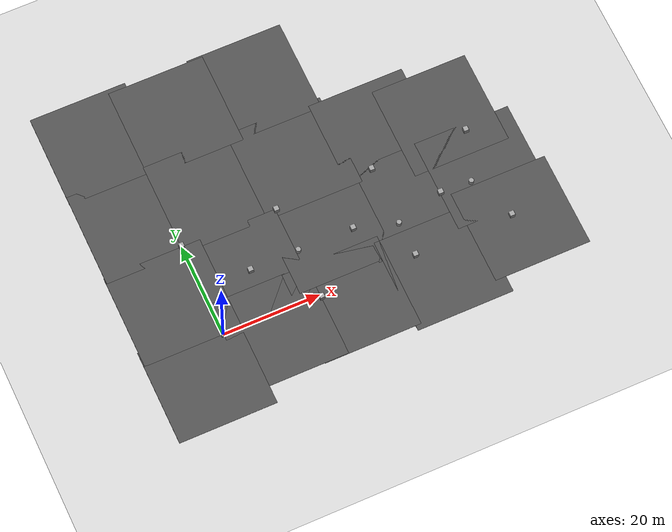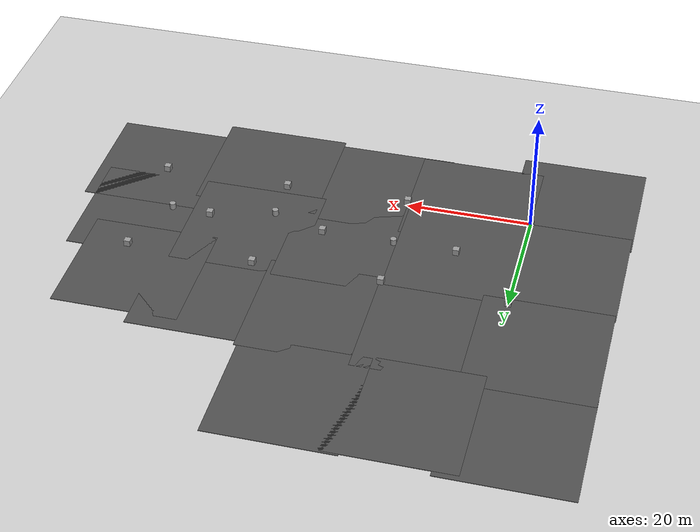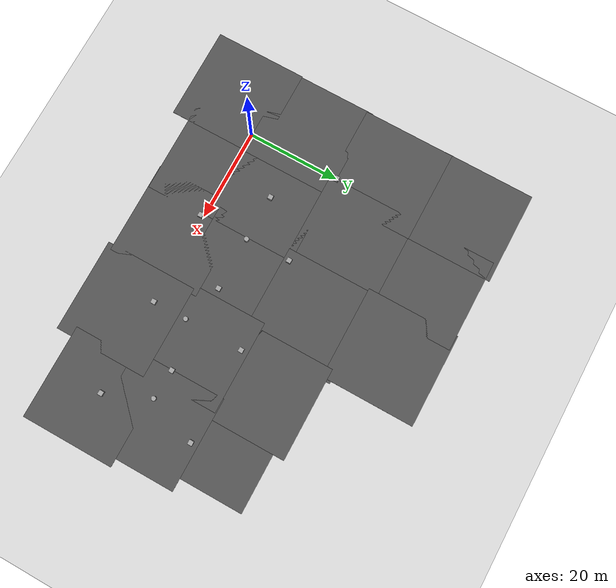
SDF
<sdf version="1.7">
 <world name="default">
  <light name="sun" type="directional">
   <pose>0 0 10 0 -0 0</pose>
   <diffuse>0.8 0.8 0.8 1</diffuse>
   <specular>0.2 0.2 0.2 1</specular>
   <attenuation>
    <range>1000</range>
    <constant>0.9</constant>
    <linear>0.01</linear>
    <quadratic>0.001</quadratic>
   </attenuation>
   <direction>-0.5 0.1 -0.9</direction>
   <spot><inner_angle>0</inner_angle><outer_angle>0</outer_angle><falloff>0</falloff></spot>
  </light>
  <model name="ground_plane">
   <static>1</static>
   <link name="link">
    <collision name="collision">
     <geometry><plane><normal>0 0 1</normal><size>100 100</size></plane></geometry>
     <surface><friction><ode><mu>100</mu><mu2>50</mu2></ode></friction></surface>
    </collision>
    <visual name="visual">
     <cast_shadows>0</cast_shadows>
     <geometry><plane><normal>0 0 1</normal><size>100 100</size></plane></geometry>
     <material>
      <script><uri>file://media/materials/scripts/gazebo.material</uri><name>Gazebo/Grey</name></script>
     </material>
    </visual>
   </link>
  </model>
  <gravity>0 0 -9.8</gravity>
  <magnetic_field>6e-06 2.3e-05 -4.2e-05</magnetic_field>
  <atmosphere type="adiabatic"/>
  <physics type="ode">
   <max_step_size>0.001</max_step_size>
   <real_time_factor>1</real_time_factor>
   <real_time_update_rate>1000</real_time_update_rate>
  </physics>
  <scene><ambient>0.4 0.4 0.4 1</ambient><background>0.7 0.7 0.7 1</background><shadows>1</shadows></scene>
  <audio><device>default</device></audio>
  <spherical_coordinates>
   <surface_model>EARTH_WGS84</surface_model>
   <latitude_deg>0</latitude_deg>
   <longitude_deg>0</longitude_deg>
   <elevation>0</elevation>
   <heading_deg>0</heading_deg>
  </spherical_coordinates>
  <model name="marker_bottom_left">
   <link name="link">
    <inertial>
     <mass>1</mass>
     <inertia>
      <ixx>0.166667</ixx>
      <ixy>0</ixy>
      <ixz>0</ixz>
      <iyy>0.166667</iyy>
      <iyz>0</iyz>
      <izz>0.166667</izz>
     </inertia>
    </inertial>
    <visual name="visual">
     <geometry><box><size>1 1 1</size></box></geometry>
     <material>
      <script><name>Gazebo/Grey</name><uri>file://media/materials/scripts/gazebo.material</uri></script>
      <shader type="pixel"/>
     </material>
    </visual>
    <collision name="collision">
     <geometry><box><size>1 1 1</size></box></geometry>
     <surface>
      <friction>
       <ode><mu>1</mu><mu2>1</mu2><fdir1>0 0 0</fdir1><slip1>0</slip1><slip2>0</slip2></ode>
       <torsional>
        <coefficient>1</coefficient>
        <patch_radius>0</patch_radius>
        <surface_radius>0</surface_radius>
        <use_patch_radius>1</use_patch_radius>
        <ode><slip>0</slip></ode>
       </torsional>
      </friction>
      <bounce><restitution_coefficient>0</restitution_coefficient><threshold>1e+06</threshold></bounce>
      <contact>
       <collide_without_contact>0</collide_without_contact>
       <collide_without_contact_bitmask>1</collide_without_contact_bitmask>
       <collide_bitmask>1</collide_bitmask>
       <ode>
        <soft_cfm>0</soft_cfm>
        <soft_erp>0.2</soft_erp>
        <kp>1e+13</kp>
        <kd>1</kd>
        <max_vel>0.01</max_vel>
        <min_depth>0</min_depth>
       </ode>
       <bullet>
        <split_impulse>1</split_impulse>
        <split_impulse_penetration_threshold>-0.01</split_impulse_penetration_threshold>
        <soft_cfm>0</soft_cfm>
        <soft_erp>0.2</soft_erp>
        <kp>1e+13</kp>
        <kd>1</kd>
       </bullet>
      </contact>
     </surface>
    </collision>
   </link>
   <static>1</static>
   <pose>0 20 0.549996 1e-05 -0 2.2e-05</pose>
  </model>
  <model name="marker_bottom_right">
   <link name="link">
    <inertial>
     <mass>1</mass>
     <inertia>
      <ixx>0.166667</ixx>
      <ixy>0</ixy>
      <ixz>0</ixz>
      <iyy>0.166667</iyy>
      <iyz>0</iyz>
      <izz>0.166667</izz>
     </inertia>
    </inertial>
    <visual name="visual">
     <geometry><box><size>1 1 1</size></box></geometry>
     <material>
      <script><name>Gazebo/Grey</name><uri>file://media/materials/scripts/gazebo.material</uri></script>
      <shader type="pixel"/>
     </material>
    </visual>
    <collision name="collision">
     <geometry><box><size>1 1 1</size></box></geometry>
     <surface>
      <friction>
       <ode><mu>1</mu><mu2>1</mu2><fdir1>0 0 0</fdir1><slip1>0</slip1><slip2>0</slip2></ode>
       <torsional>
        <coefficient>1</coefficient>
        <patch_radius>0</patch_radius>
        <surface_radius>0</surface_radius>
        <use_patch_radius>1</use_patch_radius>
        <ode><slip>0</slip></ode>
       </torsional>
      </friction>
      <bounce><restitution_coefficient>0</restitution_coefficient><threshold>1e+06</threshold></bounce>
      <contact>
       <collide_without_contact>0</collide_without_contact>
       <collide_without_contact_bitmask>1</collide_without_contact_bitmask>
       <collide_bitmask>1</collide_bitmask>
       <ode>
        <soft_cfm>0</soft_cfm>
        <soft_erp>0.2</soft_erp>
        <kp>1e+13</kp>
        <kd>1</kd>
        <max_vel>0.01</max_vel>
        <min_depth>0</min_depth>
       </ode>
       <bullet>
        <split_impulse>1</split_impulse>
        <split_impulse_penetration_threshold>-0.01</split_impulse_penetration_threshold>
        <soft_cfm>0</soft_cfm>
        <soft_erp>0.2</soft_erp>
        <kp>1e+13</kp>
        <kd>1</kd>
       </bullet>
      </contact>
     </surface>
    </collision>
   </link>
   <static>1</static>
  </model>
  <model name="marker_top_right">
   <link name="link">
    <inertial>
     <mass>1</mass>
     <inertia>
      <ixx>0.166667</ixx>
      <ixy>0</ixy>
      <ixz>0</ixz>
      <iyy>0.166667</iyy>
      <iyz>0</iyz>
      <izz>0.166667</izz>
     </inertia>
    </inertial>
    <visual name="visual">
     <geometry><box><size>1 1 1</size></box></geometry>
     <material>
      <script><name>Gazebo/Grey</name><uri>file://media/materials/scripts/gazebo.material</uri></script>
      <shader type="pixel"/>
     </material>
    </visual>
    <collision name="collision">
     <geometry><box><size>1 1 1</size></box></geometry>
     <surface>
      <friction>
       <ode><mu>1</mu><mu2>1</mu2><fdir1>0 0 0</fdir1><slip1>0</slip1><slip2>0</slip2></ode>
       <torsional>
        <coefficient>1</coefficient>
        <patch_radius>0</patch_radius>
        <surface_radius>0</surface_radius>
        <use_patch_radius>1</use_patch_radius>
        <ode><slip>0</slip></ode>
       </torsional>
      </friction>
      <bounce><restitution_coefficient>0</restitution_coefficient><threshold>1e+06</threshold></bounce>
      <contact>
       <collide_without_contact>0</collide_without_contact>
       <collide_without_contact_bitmask>1</collide_without_contact_bitmask>
       <collide_bitmask>1</collide_bitmask>
       <ode>
        <soft_cfm>0</soft_cfm>
        <soft_erp>0.2</soft_erp>
        <kp>1e+13</kp>
        <kd>1</kd>
        <max_vel>0.01</max_vel>
        <min_depth>0</min_depth>
       </ode>
       <bullet>
        <split_impulse>1</split_impulse>
        <split_impulse_penetration_threshold>-0.01</split_impulse_penetration_threshold>
        <soft_cfm>0</soft_cfm>
        <soft_erp>0.2</soft_erp>
        <kp>1e+13</kp>
        <kd>1</kd>
       </bullet>
      </contact>
     </surface>
    </collision>
   </link>
   <static>0</static>
   <pose>20.095 -0.660322 0.549995 1e-05 0 0.02167</pose>
  </model>
  <model name="marker_top_left">
   <link name="link">
    <inertial>
     <mass>1</mass>
     <inertia>
      <ixx>0.166667</ixx>
      <ixy>0</ixy>
      <ixz>0</ixz>
      <iyy>0.166667</iyy>
      <iyz>0</iyz>
      <izz>0.166667</izz>
     </inertia>
    </inertial>
    <visual name="visual">
     <geometry><box><size>1 1 1</size></box></geometry>
     <material>
      <script><name>Gazebo/Grey</name><uri>file://media/materials/scripts/gazebo.material</uri></script>
      <shader type="pixel"/>
     </material>
    </visual>
    <collision name="collision">
     <geometry><box><size>1 1 1</size></box></geometry>
     <surface>
      <friction>
       <ode><mu>1</mu><mu2>1</mu2><fdir1>0 0 0</fdir1><slip1>0</slip1><slip2>0</slip2></ode>
       <torsional>
        <coefficient>1</coefficient>
        <patch_radius>0</patch_radius>
        <surface_radius>0</surface_radius>
        <use_patch_radius>1</use_patch_radius>
        <ode><slip>0</slip></ode>
       </torsional>
      </friction>
      <bounce><restitution_coefficient>0</restitution_coefficient><threshold>1e+06</threshold></bounce>
      <contact>
       <collide_without_contact>0</collide_without_contact>
       <collide_without_contact_bitmask>1</collide_without_contact_bitmask>
       <collide_bitmask>1</collide_bitmask>
       <ode>
        <soft_cfm>0</soft_cfm>
        <soft_erp>0.2</soft_erp>
        <kp>1e+13</kp>
        <kd>1</kd>
        <max_vel>0.01</max_vel>
        <min_depth>0</min_depth>
       </ode>
       <bullet>
        <split_impulse>1</split_impulse>
        <split_impulse_penetration_threshold>-0.01</split_impulse_penetration_threshold>
        <soft_cfm>0</soft_cfm>
        <soft_erp>0.2</soft_erp>
        <kp>1e+13</kp>
        <kd>1</kd>
       </bullet>
      </contact>
     </surface>
    </collision>
   </link>
   <static>0</static>
   <pose>19.6961 19.6629 0.549997 1.1e-05 1e-06 -0.024595</pose>
  </model>
  <model name="asphalt_plane_clone_clone_0_clone_0">
   <static>1</static>
   <link name="link">
    <collision name="collision"><geometry><box><size>20 20 0.1</size></box></geometry></collision>
    <visual name="visual">
     <cast_shadows>0</cast_shadows>
     <geometry><box><size>20 20 0.1</size></box></geometry>
     <material>
      <script>
       <uri>model://asphalt_plane/materials/scripts</uri>
       <uri>model://asphalt_plane/materials/textures</uri>
       <name>vrc/asphalt</name>
      </script>
     </material>
    </visual>
   </link>
   <pose>9.55958 9.97898 0 0 -0 0</pose>
  </model>
  <model name="asphalt_plane_clone_clone_0_clone_0_clone">
   <static>1</static>
   <link name="link">
    <collision name="collision"><geometry><box><size>20 20 0.1</size></box></geometry></collision>
    <visual name="visual">
     <cast_shadows>0</cast_shadows>
     <geometry><box><size>20 20 0.1</size></box></geometry>
     <material>
      <script>
       <uri>model://asphalt_plane/materials/scripts</uri>
       <uri>model://asphalt_plane/materials/textures</uri>
       <name>vrc/asphalt</name>
      </script>
     </material>
    </visual>
   </link>
   <pose>26.6378 11.777 0 0 -0 0</pose>
  </model>
  <model name="asphalt_plane_clone_clone_0_clone_0_clone_clone">
   <static>1</static>
   <link name="link">
    <collision name="collision"><geometry><box><size>20 20 0.1</size></box></geometry></collision>
    <visual name="visual">
     <cast_shadows>0</cast_shadows>
     <geometry><box><size>20 20 0.1</size></box></geometry>
     <material>
      <script>
       <uri>model://asphalt_plane/materials/scripts</uri>
       <uri>model://asphalt_plane/materials/textures</uri>
       <name>vrc/asphalt</name>
      </script>
     </material>
    </visual>
   </link>
   <pose>10.0086 -3.1862 0 0 -0 0</pose>
  </model>
  <model name="asphalt_plane_clone_clone_0_clone_0_clone_clone_0">
   <static>1</static>
   <link name="link">
    <collision name="collision"><geometry><box><size>20 20 0.1</size></box></geometry></collision>
    <visual name="visual">
     <cast_shadows>0</cast_shadows>
     <geometry><box><size>20 20 0.1</size></box></geometry>
     <material>
      <script>
       <uri>model://asphalt_plane/materials/scripts</uri>
       <uri>model://asphalt_plane/materials/textures</uri>
       <name>vrc/asphalt</name>
      </script>
     </material>
    </visual>
   </link>
   <pose>25.0254 -3.29203 0 0 -0 0</pose>
  </model>
  <model name="asphalt_plane_clone_clone_0_clone_0_clone_clone_1">
   <static>1</static>
   <link name="link">
    <collision name="collision"><geometry><box><size>20 20 0.1</size></box></geometry></collision>
    <visual name="visual">
     <cast_shadows>0</cast_shadows>
     <geometry><box><size>20 20 0.1</size></box></geometry>
     <material>
      <script>
       <uri>model://asphalt_plane/materials/scripts</uri>
       <uri>model://asphalt_plane/materials/textures</uri>
       <name>vrc/asphalt</name>
      </script>
     </material>
    </visual>
   </link>
   <pose>9.93751 28.5985 0 0 -0 0</pose>
  </model>
  <model name="asphalt_plane_clone_clone_0_clone_0_clone_clone_2">
   <static>1</static>
   <link name="link">
    <collision name="collision"><geometry><box><size>20 20 0.1</size></box></geometry></collision>
    <visual name="visual">
     <cast_shadows>0</cast_shadows>
     <geometry><box><size>20 20 0.1</size></box></geometry>
     <material>
      <script>
       <uri>model://asphalt_plane/materials/scripts</uri>
       <uri>model://asphalt_plane/materials/textures</uri>
       <name>vrc/asphalt</name>
      </script>
     </material>
    </visual>
   </link>
   <pose>27.3435 28.4654 0 0 -0 0</pose>
  </model>
  <model name="asphalt_plane_clone_clone_0_clone_0_clone_clone_3">
   <static>1</static>
   <link name="link">
    <collision name="collision"><geometry><box><size>20 20 0.1</size></box></geometry></collision>
    <visual name="visual">
     <cast_shadows>0</cast_shadows>
     <geometry><box><size>20 20 0.1</size></box></geometry>
     <material>
      <script>
       <uri>model://asphalt_plane/materials/scripts</uri>
       <uri>model://asphalt_plane/materials/textures</uri>
       <name>vrc/asphalt</name>
      </script>
     </material>
    </visual>
   </link>
   <pose>-6.05119 28.7094 0 0 -0 0</pose>
  </model>
  <model name="asphalt_plane_clone_clone_0_clone_0_clone_clone_4">
   <static>1</static>
   <link name="link">
    <collision name="collision"><geometry><box><size>20 20 0.1</size></box></geometry></collision>
    <visual name="visual">
     <cast_shadows>0</cast_shadows>
     <geometry><box><size>20 20 0.1</size></box></geometry>
     <material>
      <script>
       <uri>model://asphalt_plane/materials/scripts</uri>
       <uri>model://asphalt_plane/materials/textures</uri>
       <name>vrc/asphalt</name>
      </script>
     </material>
    </visual>
   </link>
   <pose>-6.18027 10.0246 0 0 -0 0</pose>
  </model>
  <model name="asphalt_plane_clone_clone_0_clone_0_clone_clone_5">
   <static>1</static>
   <link name="link">
    <collision name="collision"><geometry><box><size>20 20 0.1</size></box></geometry></collision>
    <visual name="visual">
     <cast_shadows>0</cast_shadows>
     <geometry><box><size>20 20 0.1</size></box></geometry>
     <material>
      <script>
       <uri>model://asphalt_plane/materials/scripts</uri>
       <uri>model://asphalt_plane/materials/textures</uri>
       <name>vrc/asphalt</name>
      </script>
     </material>
    </visual>
   </link>
   <pose>-6.36926 -6.88231 0 0 -0 0</pose>
  </model>
  <model name="asphalt_plane_clone_clone_0_clone_0_clone_clone_6">
   <static>1</static>
   <link name="link">
    <collision name="collision"><geometry><box><size>20 20 0.1</size></box></geometry></collision>
    <visual name="visual">
     <cast_shadows>0</cast_shadows>
     <geometry><box><size>20 20 0.1</size></box></geometry>
     <material>
      <script>
       <uri>model://asphalt_plane/materials/scripts</uri>
       <uri>model://asphalt_plane/materials/textures</uri>
       <name>vrc/asphalt</name>
      </script>
     </material>
    </visual>
   </link>
   <pose>-6.08705 47.0345 0 0 -0 0</pose>
  </model>
  <model name="asphalt_plane_clone_clone_0_clone_0_clone_clone_7">
   <static>1</static>
   <link name="link">
    <collision name="collision"><geometry><box><size>20 20 0.1</size></box></geometry></collision>
    <visual name="visual">
     <cast_shadows>0</cast_shadows>
     <geometry><box><size>20 20 0.1</size></box></geometry>
     <material>
      <script>
       <uri>model://asphalt_plane/materials/scripts</uri>
       <uri>model://asphalt_plane/materials/textures</uri>
       <name>vrc/asphalt</name>
      </script>
     </material>
    </visual>
   </link>
   <pose>10.0798 46.1623 0 0 -0 0</pose>
  </model>
  <model name="asphalt_plane_clone_clone_0_clone_0_clone_clone_8">
   <static>1</static>
   <link name="link">
    <collision name="collision"><geometry><box><size>20 20 0.1</size></box></geometry></collision>
    <visual name="visual">
     <cast_shadows>0</cast_shadows>
     <geometry><box><size>20 20 0.1</size></box></geometry>
     <material>
      <script>
       <uri>model://asphalt_plane/materials/scripts</uri>
       <uri>model://asphalt_plane/materials/textures</uri>
       <name>vrc/asphalt</name>
      </script>
     </material>
    </visual>
   </link>
   <pose>26.8137 46.4517 0 0 -0 0</pose>
  </model>
  <model name="marker_top_left_clone">
   <link name="link">
    <inertial>
     <mass>1</mass>
     <inertia>
      <ixx>0.166667</ixx>
      <ixy>0</ixy>
      <ixz>0</ixz>
      <iyy>0.166667</iyy>
      <iyz>0</iyz>
      <izz>0.166667</izz>
     </inertia>
    </inertial>
    <visual name="visual">
     <geometry><box><size>1 1 1</size></box></geometry>
     <material>
      <script><name>Gazebo/Grey</name><uri>file://media/materials/scripts/gazebo.material</uri></script>
      <shader type="pixel"/>
     </material>
    </visual>
    <collision name="collision">
     <geometry><box><size>1 1 1</size></box></geometry>
     <surface>
      <friction>
       <ode><mu>1</mu><mu2>1</mu2><fdir1>0 0 0</fdir1><slip1>0</slip1><slip2>0</slip2></ode>
       <torsional>
        <coefficient>1</coefficient>
        <patch_radius>0</patch_radius>
        <surface_radius>0</surface_radius>
        <use_patch_radius>1</use_patch_radius>
        <ode><slip>0</slip></ode>
       </torsional>
      </friction>
      <bounce><restitution_coefficient>0</restitution_coefficient><threshold>1e+06</threshold></bounce>
      <contact>
       <collide_without_contact>0</collide_without_contact>
       <collide_without_contact_bitmask>1</collide_without_contact_bitmask>
       <collide_bitmask>1</collide_bitmask>
       <ode>
        <soft_cfm>0</soft_cfm>
        <soft_erp>0.2</soft_erp>
        <kp>1e+13</kp>
        <kd>1</kd>
        <max_vel>0.01</max_vel>
        <min_depth>0</min_depth>
       </ode>
       <bullet>
        <split_impulse>1</split_impulse>
        <split_impulse_penetration_threshold>-0.01</split_impulse_penetration_threshold>
        <soft_cfm>0</soft_cfm>
        <soft_erp>0.2</soft_erp>
        <kp>1e+13</kp>
        <kd>1</kd>
       </bullet>
      </contact>
     </surface>
    </collision>
   </link>
   <static>0</static>
   <pose>40.0001 20.0001 0.550002 -4e-06 0 -0.024181</pose>
  </model>
  <model name="marker_top_right_clone">
   <link name="link">
    <inertial>
     <mass>1</mass>
     <inertia>
      <ixx>0.166667</ixx>
      <ixy>0</ixy>
      <ixz>0</ixz>
      <iyy>0.166667</iyy>
      <iyz>0</iyz>
      <izz>0.166667</izz>
     </inertia>
    </inertial>
    <visual name="visual">
     <geometry><box><size>1 1 1</size></box></geometry>
     <material>
      <script><name>Gazebo/Grey</name><uri>file://media/materials/scripts/gazebo.material</uri></script>
      <shader type="pixel"/>
     </material>
    </visual>
    <collision name="collision">
     <geometry><box><size>1 1 1</size></box></geometry>
     <surface>
      <friction>
       <ode><mu>1</mu><mu2>1</mu2><fdir1>0 0 0</fdir1><slip1>0</slip1><slip2>0</slip2></ode>
       <torsional>
        <coefficient>1</coefficient>
        <patch_radius>0</patch_radius>
        <surface_radius>0</surface_radius>
        <use_patch_radius>1</use_patch_radius>
        <ode><slip>0</slip></ode>
       </torsional>
      </friction>
      <bounce><restitution_coefficient>0</restitution_coefficient><threshold>1e+06</threshold></bounce>
      <contact>
       <collide_without_contact>0</collide_without_contact>
       <collide_without_contact_bitmask>1</collide_without_contact_bitmask>
       <collide_bitmask>1</collide_bitmask>
       <ode>
        <soft_cfm>0</soft_cfm>
        <soft_erp>0.2</soft_erp>
        <kp>1e+13</kp>
        <kd>1</kd>
        <max_vel>0.01</max_vel>
        <min_depth>0</min_depth>
       </ode>
       <bullet>
        <split_impulse>1</split_impulse>
        <split_impulse_penetration_threshold>-0.01</split_impulse_penetration_threshold>
        <soft_cfm>0</soft_cfm>
        <soft_erp>0.2</soft_erp>
        <kp>1e+13</kp>
        <kd>1</kd>
       </bullet>
      </contact>
     </surface>
    </collision>
   </link>
   <static>0</static>
   <pose>39.9999 2.9e-05 0.55 0 -0 9.9e-05</pose>
  </model>
  <model name="asphalt_plane_clone_clone_0_clone_0_clone_clone_9">
   <static>1</static>
   <link name="link">
    <collision name="collision"><geometry><box><size>20 20 0.1</size></box></geometry></collision>
    <visual name="visual">
     <cast_shadows>0</cast_shadows>
     <geometry><box><size>20 20 0.1</size></box></geometry>
     <material>
      <script>
       <uri>model://asphalt_plane/materials/scripts</uri>
       <uri>model://asphalt_plane/materials/textures</uri>
       <name>vrc/asphalt</name>
      </script>
     </material>
    </visual>
   </link>
   <pose>43.0995 11.4746 0 0 -0 0</pose>
  </model>
  <model name="asphalt_plane_clone_clone_0_clone_0_clone_clone_10">
   <static>1</static>
   <link name="link">
    <collision name="collision"><geometry><box><size>20 20 0.1</size></box></geometry></collision>
    <visual name="visual">
     <cast_shadows>0</cast_shadows>
     <geometry><box><size>20 20 0.1</size></box></geometry>
     <material>
      <script>
       <uri>model://asphalt_plane/materials/scripts</uri>
       <uri>model://asphalt_plane/materials/textures</uri>
       <name>vrc/asphalt</name>
      </script>
     </material>
    </visual>
   </link>
   <pose>43.8523 -4.36921 0 0 -0 0</pose>
  </model>
  <model name="asphalt_plane_clone_clone_0_clone_0_clone_clone_11">
   <static>1</static>
   <link name="link">
    <collision name="collision"><geometry><box><size>20 20 0.1</size></box></geometry></collision>
    <visual name="visual">
     <cast_shadows>0</cast_shadows>
     <geometry><box><size>20 20 0.1</size></box></geometry>
     <material>
      <script>
       <uri>model://asphalt_plane/materials/scripts</uri>
       <uri>model://asphalt_plane/materials/textures</uri>
       <name>vrc/asphalt</name>
      </script>
     </material>
    </visual>
   </link>
   <pose>44.5566 27.6277 0 0 -0 0</pose>
  </model>
  <model name="asphalt_plane_clone_clone_0_clone_0_clone_clone_12">
   <static>1</static>
   <link name="link">
    <collision name="collision"><geometry><box><size>20 20 0.1</size></box></geometry></collision>
    <visual name="visual">
     <cast_shadows>0</cast_shadows>
     <geometry><box><size>20 20 0.1</size></box></geometry>
     <material>
      <script>
       <uri>model://asphalt_plane/materials/scripts</uri>
       <uri>model://asphalt_plane/materials/textures</uri>
       <name>vrc/asphalt</name>
      </script>
     </material>
    </visual>
   </link>
   <pose>57.1086 25.2923 0 0 -0 0</pose>
  </model>
  <model name="asphalt_plane_clone_clone_0_clone_0_clone_clone_13">
   <static>1</static>
   <link name="link">
    <collision name="collision"><geometry><box><size>20 20 0.1</size></box></geometry></collision>
    <visual name="visual">
     <cast_shadows>0</cast_shadows>
     <geometry><box><size>20 20 0.1</size></box></geometry>
     <material>
      <script>
       <uri>model://asphalt_plane/materials/scripts</uri>
       <uri>model://asphalt_plane/materials/textures</uri>
       <name>vrc/asphalt</name>
      </script>
     </material>
    </visual>
   </link>
   <pose>59.9102 11.6877 0 0 -0 0</pose>
  </model>
  <model name="asphalt_plane_clone_clone_0_clone_0_clone_clone_14">
   <static>1</static>
   <link name="link">
    <collision name="collision"><geometry><box><size>20 20 0.1</size></box></geometry></collision>
    <visual name="visual">
     <cast_shadows>0</cast_shadows>
     <geometry><box><size>20 20 0.1</size></box></geometry>
     <material>
      <script>
       <uri>model://asphalt_plane/materials/scripts</uri>
       <uri>model://asphalt_plane/materials/textures</uri>
       <name>vrc/asphalt</name>
      </script>
     </material>
    </visual>
   </link>
   <pose>61.7213 -1.04078 0 0 -0 0</pose>
  </model>
  <model name="marker_top_left_clone_clone">
   <link name="link">
    <inertial>
     <mass>1</mass>
     <inertia>
      <ixx>0.166667</ixx>
      <ixy>0</ixy>
      <ixz>0</ixz>
      <iyy>0.166667</iyy>
      <iyz>0</iyz>
      <izz>0.166667</izz>
     </inertia>
    </inertial>
    <visual name="visual">
     <geometry><box><size>1 1 1</size></box></geometry>
     <material>
      <script><name>Gazebo/Grey</name><uri>file://media/materials/scripts/gazebo.material</uri></script>
      <shader type="pixel"/>
     </material>
    </visual>
    <collision name="collision">
     <geometry><box><size>1 1 1</size></box></geometry>
     <surface>
      <friction>
       <ode><mu>1</mu><mu2>1</mu2><fdir1>0 0 0</fdir1><slip1>0</slip1><slip2>0</slip2></ode>
       <torsional>
        <coefficient>1</coefficient>
        <patch_radius>0</patch_radius>
        <surface_radius>0</surface_radius>
        <use_patch_radius>1</use_patch_radius>
        <ode><slip>0</slip></ode>
       </torsional>
      </friction>
      <bounce><restitution_coefficient>0</restitution_coefficient><threshold>1e+06</threshold></bounce>
      <contact>
       <collide_without_contact>0</collide_without_contact>
       <collide_without_contact_bitmask>1</collide_without_contact_bitmask>
       <collide_bitmask>1</collide_bitmask>
       <ode>
        <soft_cfm>0</soft_cfm>
        <soft_erp>0.2</soft_erp>
        <kp>1e+13</kp>
        <kd>1</kd>
        <max_vel>0.01</max_vel>
        <min_depth>0</min_depth>
       </ode>
       <bullet>
        <split_impulse>1</split_impulse>
        <split_impulse_penetration_threshold>-0.01</split_impulse_penetration_threshold>
        <soft_cfm>0</soft_cfm>
        <soft_erp>0.2</soft_erp>
        <kp>1e+13</kp>
        <kd>1</kd>
       </bullet>
      </contact>
     </surface>
    </collision>
   </link>
   <static>0</static>
   <pose>60.1835 20.1969 0.550002 -4e-06 -0 -0.02445</pose>
  </model>
  <model name="marker_top_left_clone_clone_0">
   <link name="link">
    <inertial>
     <mass>1</mass>
     <inertia>
      <ixx>0.166667</ixx>
      <ixy>0</ixy>
      <ixz>0</ixz>
      <iyy>0.166667</iyy>
      <iyz>0</iyz>
      <izz>0.166667</izz>
     </inertia>
    </inertial>
    <visual name="visual">
     <geometry><box><size>1 1 1</size></box></geometry>
     <material>
      <script><name>Gazebo/Grey</name><uri>file://media/materials/scripts/gazebo.material</uri></script>
      <shader type="pixel"/>
     </material>
    </visual>
    <collision name="collision">
     <geometry><box><size>1 1 1</size></box></geometry>
     <surface>
      <friction>
       <ode><mu>1</mu><mu2>1</mu2><fdir1>0 0 0</fdir1><slip1>0</slip1><slip2>0</slip2></ode>
       <torsional>
        <coefficient>1</coefficient>
        <patch_radius>0</patch_radius>
        <surface_radius>0</surface_radius>
        <use_patch_radius>1</use_patch_radius>
        <ode><slip>0</slip></ode>
       </torsional>
      </friction>
      <bounce><restitution_coefficient>0</restitution_coefficient><threshold>1e+06</threshold></bounce>
      <contact>
       <collide_without_contact>0</collide_without_contact>
       <collide_without_contact_bitmask>1</collide_without_contact_bitmask>
       <collide_bitmask>1</collide_bitmask>
       <ode>
        <soft_cfm>0</soft_cfm>
        <soft_erp>0.2</soft_erp>
        <kp>1e+13</kp>
        <kd>1</kd>
        <max_vel>0.01</max_vel>
        <min_depth>0</min_depth>
       </ode>
       <bullet>
        <split_impulse>1</split_impulse>
        <split_impulse_penetration_threshold>-0.01</split_impulse_penetration_threshold>
        <soft_cfm>0</soft_cfm>
        <soft_erp>0.2</soft_erp>
        <kp>1e+13</kp>
        <kd>1</kd>
       </bullet>
      </contact>
     </surface>
    </collision>
   </link>
   <static>0</static>
   <pose>60.4638 0.082871 0.549995 0 -1e-05 -0.024406</pose>
  </model>
  <model name="unit_cylinder">
   <pose>19.9999 10 0.54999 -0 -0 -0.000161</pose>
   <link name="link">
    <inertial>
     <mass>1</mass>
     <inertia><ixx>0.145833</ixx><ixy>0</ixy><ixz>0</ixz><iyy>0.145833</iyy><iyz>0</iyz><izz>0.125</izz></inertia>
    </inertial>
    <collision name="collision">
     <geometry><cylinder><radius>0.5</radius><length>1</length></cylinder></geometry>
    </collision>
    <visual name="visual">
     <geometry><cylinder><radius>0.5</radius><length>1</length></cylinder></geometry>
     <material>
      <script><name>Gazebo/Grey</name><uri>file://media/materials/scripts/gazebo.material</uri></script>
     </material>
    </visual>
   </link>
  </model>
  <model name="unit_box">
   <pose>9.99996 10.0139 0.55 0 -0 4.2e-05</pose>
   <link name="link">
    <inertial>
     <mass>1</mass>
     <inertia>
      <ixx>0.166667</ixx>
      <ixy>0</ixy>
      <ixz>0</ixz>
      <iyy>0.166667</iyy>
      <iyz>0</iyz>
      <izz>0.166667</izz>
     </inertia>
    </inertial>
    <collision name="collision"><geometry><box><size>1 1 1</size></box></geometry></collision>
    <visual name="visual">
     <geometry><box><size>1 1 1</size></box></geometry>
     <material>
      <script><name>Gazebo/Grey</name><uri>file://media/materials/scripts/gazebo.material</uri></script>
     </material>
    </visual>
   </link>
  </model>
  <model name="unit_cylinder_0">
   <pose>39.9392 7.31937 0.55 -1e-06 -0 5e-06</pose>
   <link name="link">
    <inertial>
     <mass>1</mass>
     <inertia><ixx>0.145833</ixx><ixy>0</ixy><ixz>0</ixz><iyy>0.145833</iyy><iyz>0</iyz><izz>0.125</izz></inertia>
    </inertial>
    <collision name="collision">
     <geometry><cylinder><radius>0.5</radius><length>1</length></cylinder></geometry>
    </collision>
    <visual name="visual">
     <geometry><cylinder><radius>0.5</radius><length>1</length></cylinder></geometry>
     <material>
      <script><name>Gazebo/Grey</name><uri>file://media/materials/scripts/gazebo.material</uri></script>
     </material>
    </visual>
   </link>
  </model>
  <model name="unit_box_0">
   <pose>31.467 10.0037 0.550002 -4e-06 -0 9e-06</pose>
   <link name="link">
    <inertial>
     <mass>1</mass>
     <inertia>
      <ixx>0.166667</ixx>
      <ixy>0</ixy>
      <ixz>0</ixz>
      <iyy>0.166667</iyy>
      <iyz>0</iyz>
      <izz>0.166667</izz>
     </inertia>
    </inertial>
    <collision name="collision"><geometry><box><size>1 1 1</size></box></geometry></collision>
    <visual name="visual">
     <geometry><box><size>1 1 1</size></box></geometry>
     <material>
      <script><name>Gazebo/Grey</name><uri>file://media/materials/scripts/gazebo.material</uri></script>
     </material>
    </visual>
   </link>
  </model>
  <model name="unit_cylinder_1">
   <pose>56.3924 9.65483 0.550002 -2e-06 2e-06 4e-05</pose>
   <link name="link">
    <inertial>
     <mass>1</mass>
     <inertia><ixx>0.145833</ixx><ixy>0</ixy><ixz>0</ixz><iyy>0.145833</iyy><iyz>0</iyz><izz>0.125</izz></inertia>
    </inertial>
    <collision name="collision">
     <geometry><cylinder><radius>0.5</radius><length>1</length></cylinder></geometry>
    </collision>
    <visual name="visual">
     <geometry><cylinder><radius>0.5</radius><length>1</length></cylinder></geometry>
     <material>
      <script><name>Gazebo/Grey</name><uri>file://media/materials/scripts/gazebo.material</uri></script>
     </material>
    </visual>
   </link>
  </model>
  <model name="unit_box_1">
   <pose>50 9.99999 0.549997 6e-06 -0 1.6e-05</pose>
   <link name="link">
    <inertial>
     <mass>1</mass>
     <inertia>
      <ixx>0.166667</ixx>
      <ixy>0</ixy>
      <ixz>0</ixz>
      <iyy>0.166667</iyy>
      <iyz>0</iyz>
      <izz>0.166667</izz>
     </inertia>
    </inertial>
    <collision name="collision"><geometry><box><size>1 1 1</size></box></geometry></collision>
    <visual name="visual">
     <geometry><box><size>1 1 1</size></box></geometry>
     <material>
      <script><name>Gazebo/Grey</name><uri>file://media/materials/scripts/gazebo.material</uri></script>
     </material>
    </visual>
   </link>
  </model>
 </world>
</sdf>
